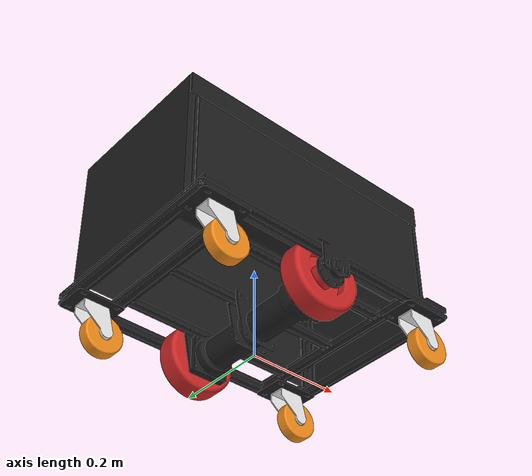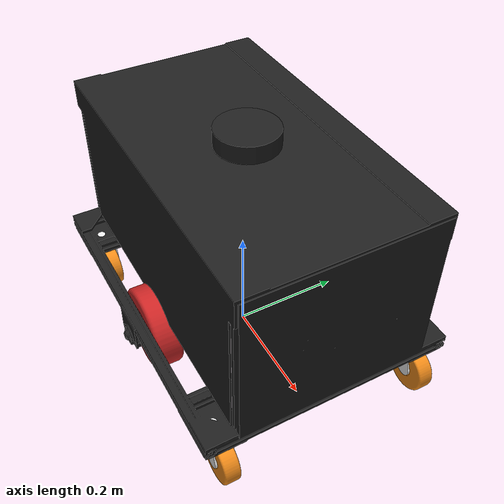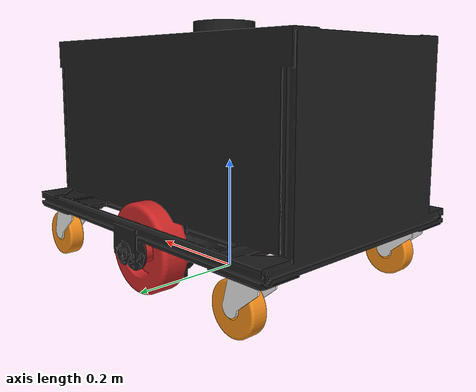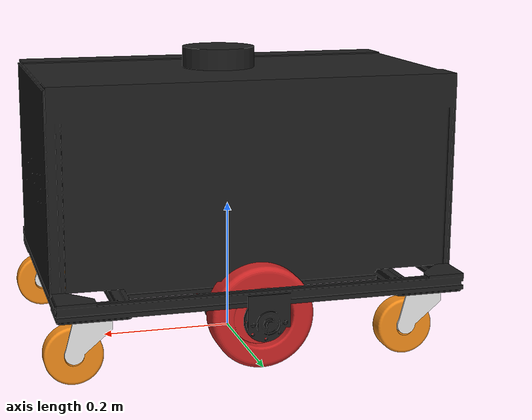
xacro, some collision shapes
<?xml version="1.0" ?>
<robot name="turtlebot3_waffle" xmlns:xacro="http://ros.org/wiki/xacro">
  <xacro:include filename="$(find turtlebot3_description)/urdf/common_properties.xacro"/>
  <xacro:include filename="$(find turtlebot3_description)/urdf/turtlebot3_waffle.gazebo.xacro"/>

  <link name="base_footprint"/>

  <joint name="base_joint" type="fixed">
    <parent link="base_footprint"/>
    <child link="base_link"/>
    <origin xyz="0 0 0" rpy="0 0 0"/>
  </joint>

  <link name="base_link">
    <visual>
      <origin xyz="0 0 0" rpy="0 0 0"/>
      <geometry>
        <mesh filename="package://turtlebot3_description/meshes/bases/base_link.STL" />
      </geometry>
      <material name="light_black"/>
    </visual>

    <collision>
      <origin xyz="0 0 0" rpy="0 0 0"/>
      <geometry>
        <mesh filename="package://turtlebot3_description/meshes/bases/base_link.STL" />
      </geometry>
    </collision>

    <inertial>
      <origin xyz="-1.61402176119143E-05 0.211585363756747 1.99118160999409E-08" rpy="0 0 0"/>
      <mass value="4.97825119597728"/>
      <inertia
        ixx="0.0254562268649868"
        ixy="2.61811741763744E-08"
        ixz="-1.52281155067974E-10"
        iyy="0.0769425840258945"
        iyz="-1.42371428386064E-09"
        izz="0.0715575020127173" />
    </inertial>
  </link>

  <joint name="wheel_left_joint" type="continuous">
    <parent link="base_link"/>
    <child link="wheel_left_link"/>
    <origin xyz="0 0.2075 0.075638" rpy="-1.5708 0 0"/>
    <axis xyz="0 0 1"/>
    <dynamics friction="0.01"/>
  </joint>

  <link name="wheel_left_link">
    <visual>
      <origin xyz="0 0 0" rpy="0 0 0"/>
      <geometry>
        <mesh filename="package://turtlebot3_description/meshes/wheels/wheel_left_link.STL"/>
      </geometry>
      <material name="red"/>
    </visual>

    <collision>
      <origin xyz="0 0 0" rpy="0 0 0"/>
      <geometry>
        <mesh filename="package://turtlebot3_description/meshes/wheels/wheel_left_link.STL"/>
      </geometry>
      <surface>
       <friction>
        <ode>
         <mu>0.7</mu>
         <mu2>0.7</mu2>
        </ode>
       </friction>
      </surface>
    </collision>

    <inertial>
      <origin xyz="1.8744E-15 -7.9797E-15 -0.0275" />
      <mass value="0.69027" />
       <inertia
        ixx="0.0012793"
        ixy="4.9184E-37"
        ixz="3.4973E-20"
        iyy="0.0012793"
        iyz="-2.2668E-36"
        izz="0.0022925" />
      </inertial>
  </link>

  <joint name="wheel_right_joint" type="continuous">
    <parent link="base_link"/>
    <child link="wheel_right_link"/>
    <origin xyz="0 -0.1525 0.075638" rpy="-1.5708 0 0"/>
    <axis xyz="0 0 1"/>
    <dynamics friction="0.01"/>
  </joint>

  <link name="wheel_right_link">
    <visual>
      <origin xyz="0 0 0" rpy="0 0 0"/>
      <geometry>
        <mesh filename="package://turtlebot3_description/meshes/wheels/wheel_left_link.STL"/>
      </geometry>
      <material name="red"/>
    </visual>

    <collision>
      <origin xyz="0 0 0" rpy="0 0 0"/>
      <geometry>
        <mesh filename="package://turtlebot3_description/meshes/wheels/wheel_left_link.STL"/>
      </geometry>
      <surface>
       <friction>
        <ode>
         <mu>0.7</mu>
         <mu2>0.7</mu2>
        </ode>
       </friction>
      </surface>
    </collision>

    <inertial>
      <origin xyz="6.5181E-15 4.3313E-14 0.0275" />
      <mass value="0.69027" />
      <inertia
        ixx="0.0012793"
        ixy="-4.8678E-37"
        ixz="4.6267E-20"
        iyy="0.0012793"
        iyz="-2.2668E-36"
        izz="0.0022925" />
      </inertial>
  </link>

  <joint name="imu_joint" type="fixed">
    <parent link="base_link"/>
    <child link="imu_link"/>
    <origin xyz="0 0 0.10" rpy="0 0 0"/>
  </joint>

  <link name="imu_link"/>

    <joint name="scan_joint" type="fixed">
    <parent link="base_link"/>
    <child link="base_scan"/>
    <origin xyz="0 0 0.438" rpy="0 0 0"/>
  </joint>

  <link name="base_scan">
    <visual>
      <origin xyz="0 0 0" rpy="0 0 0"/>
      <geometry>
        <mesh filename="package://turtlebot3_description/meshes/sensors/lds.stl" scale="0.001 0.001 0.001"/>
      </geometry>
      <material name="dark"/>
    </visual>

    <collision>
      <origin xyz="0.015 0 -0.0065" rpy="0 0 0"/>
      <geometry>
        <cylinder length="0.0315" radius="0.055"/>
      </geometry>
    </collision>

    <inertial>
      <mass value="0.114" />
      <origin xyz="0 0 0" />
      <inertia ixx="0.001" ixy="0.0" ixz="0.0"
               iyy="0.001" iyz="0.0"
               izz="0.001" />
    </inertial>
  </link>

   <joint name="caster1_joint" type="fixed">
    <parent link="base_link"/>
    <child link="caster1_link"/>
    <origin xyz="0.27449 0.20468 0.046466" rpy="1.5708 0 0"/>
    <axis xyz="0 0 0"/>
  </joint>

  <link name="caster1_link">
      <visual>
      <origin xyz="0 0 0" rpy="0 0 0"/>
      <geometry>
        <mesh filename="package://turtlebot3_description/meshes/wheels/caster1_link.STL" />
      </geometry>
      <material name="white"/>
    </visual>

    <collision>
      <origin xyz="0 0 0" rpy="0 0 0"/>
      <geometry>
        <mesh filename="package://turtlebot3_description/meshes/wheels/caster1_link.STL" />
      </geometry>
    </collision>

    <inertial>
      <origin xyz="-0.010009 0.016251 0.01778" />
      <mass value="0.038755" />
      <inertia
        ixx="2.3231E-05"
        ixy="9.1783E-06"
        ixz="2.2409E-21"
        iyy="1.6245E-05"
        iyz="-1.1984E-21"
        izz="2.7613E-05" />
    </inertial>
  </link>

   <joint name="caster2_joint" type="fixed">
    <parent link="base_link"/>
    <child link="caster2_link"/>
    <origin xyz="0.27449 -0.16912 0.046466" rpy="1.5708 0 0"/>
    <axis xyz="0 0 0"/>
  </joint>

  <link name="caster2_link">
      <visual>
      <origin xyz="0 0 0" rpy="0 0 0"/>
      <geometry>
        <mesh filename="package://turtlebot3_description/meshes/wheels/caster2_link.STL" />
      </geometry>
      <material name="white"/>
    </visual>

    <collision>
      <origin xyz="0 0 0" rpy="0 0 0"/>
      <geometry>
        <mesh filename="package://turtlebot3_description/meshes/wheels/caster2_link.STL" />
      </geometry>
    </collision>

    <inertial>
      <origin xyz="-0.010009 0.016251 0.01778" />
      <mass value="0.038755" />
      <inertia
        ixx="2.3231E-05"
        ixy="9.1783E-06"
        ixz="3.4536E-22"
        iyy="1.6245E-05"
        iyz="-6.0741E-23"
        izz="2.7613E-05" />
    </inertial>
  </link>

     <joint name="caster3_joint" type="fixed">
    <parent link="base_link"/>
    <child link="caster3_link"/>
    <origin xyz="-0.22061 0.20468 0.046466" rpy="1.5708 0 0"/>
    <axis xyz="0 0 0"/>
  </joint>

  <link name="caster3_link">
      <visual>
      <origin xyz="0 0 0" rpy="0 0 0"/>
      <geometry>
        <mesh filename="package://turtlebot3_description/meshes/wheels/caster3_link.STL" />
      </geometry>
      <material name="white"/>
    </visual>

    <collision>
      <origin xyz="0 0 0" rpy="0 0 0"/>
      <geometry>
        <mesh filename="package://turtlebot3_description/meshes/wheels/caster3_link.STL" />
      </geometry>
    </collision>

    <inertial>
      <origin xyz="-0.010009 0.016251 0.01778" />
      <mass value="0.038755" />
      <inertia
        ixx="2.3231E-05"
        ixy="9.1783E-06"
        ixz="-1.6302E-21"
        iyy="1.6245E-05"
        iyz="4.2278E-23"
        izz="2.7613E-05" />
    </inertial>
  </link>

    <joint name="caster4_joint" type="fixed">
    <parent link="base_link"/>
    <child link="caster4_link"/>
    <origin xyz="-0.22061 -0.16912 0.046466" rpy="1.5708 0 0"/>
    <axis xyz="0 0 0"/>
  </joint>

  <link name="caster4_link">
      <visual>
      <origin xyz="0 0 0" rpy="0 0 0"/>
      <geometry>
        <mesh filename="package://turtlebot3_description/meshes/wheels/caster4_link.STL" />
      </geometry>
      <material name="white"/>
    </visual>

    <collision>
      <origin xyz="0 0 0" rpy="0 0 0"/>
      <geometry>
        <mesh filename="package://turtlebot3_description/meshes/wheels/caster4_link.STL" />
      </geometry>
    </collision>

    <inertial>
      <origin xyz="-0.010009 0.016251 0.01778" />
      <mass value="0.038755" />
      <inertia
        ixx="2.3231E-05"
        ixy="9.1783E-06"
        ixz="-1.0983E-21"
        iyy="1.6245E-05"
        iyz="1.7878E-22"
        izz="2.7613E-05" />
    </inertial>
  </link>

    <joint name="roda1_joint" type="fixed">
    <parent link="caster1_link"/>
    <child link="roda1_link"/>
    <origin xyz="0 -0.0035 0" rpy="0 0 0.057049"/>
    <axis xyz="0 0 0"/>
    <dynamics damping="0" friction="0"/>
  </joint>

  <link name="roda1_link">
      <visual>
      <origin xyz="0 0 0" rpy="0 0 0"/>
      <geometry>
        <mesh filename="package://turtlebot3_description/meshes/wheels/roda1_link.STL" />
      </geometry>
      <material name="orange"/>
    </visual>

    <collision>
      <origin xyz="0 0 0" rpy="0 0 0"/>
      <geometry>
        <mesh filename="package://turtlebot3_description/meshes/wheels/roda1_link.STL" />
      </geometry>
      <surface>
       <friction>
        <ode>
         <mu>0</mu>
         <mu2>0</mu2>
        </ode>
       </friction>
      </surface>
    </collision>

    <inertial>
      <origin xyz="3.3307E-16 -2.0227E-15 0.017714" />
      <mass value="0.13541" />
      <inertia
        ixx="7.4142E-05"
        ixy="-8.4703E-22"
        ixz="9.1514E-19"
        iyy="7.4142E-05"
        iyz="-6.5014E-18"
        izz="0.00013101" />
    </inertial>
  </link>

    <joint name="roda2_joint" type="fixed">
    <parent link="caster2_link"/>
    <child link="roda2_link"/>
    <origin xyz="0 -0.0035 0" rpy="0 0 0.057049"/>
    <axis xyz="0 0 0"/>
    <dynamics damping="0" friction="0"/>
  </joint>

  <link name="roda2_link">
      <visual>
      <origin xyz="0 0 0" rpy="0 0 0"/>
      <geometry>
        <mesh filename="package://turtlebot3_description/meshes/wheels/roda2_link.STL" />
      </geometry>
      <material name="orange"/>
    </visual>

    <collision>
      <origin xyz="0 0 0" rpy="0 0 0"/>
      <geometry>
        <mesh filename="package://turtlebot3_description/meshes/wheels/roda2_link.STL" />
      </geometry>
      <surface>
       <friction>
        <ode>
         <mu>0</mu>
         <mu2>0</mu2>
        </ode>
       </friction>
      </surface>
    </collision>

    <inertial>
      <origin xyz="2.7756E-16 -2.1233E-15 0.017714" />
      <mass value="0.13541" />
      <inertia
        ixx="7.4142E-05"
        ixy="-8.4703E-22"
        ixz="9.0007E-19"
        iyy="7.4142E-05"
        iyz="-6.7956E-18"
        izz="0.00013101" />
    </inertial>
  </link>

    <joint name="roda3_joint" type="fixed">
    <parent link="caster3_link"/>
    <child link="roda3_link"/>
    <origin xyz="0 -0.0035 0" rpy="0 0 0.057049"/>
    <axis xyz="0 0 0"/>
    <dynamics damping="0" friction="0"/>
  </joint>

  <link name="roda3_link">
      <visual>
      <origin xyz="0 0 0" rpy="0 0 0"/>
      <geometry>
        <mesh filename="package://turtlebot3_description/meshes/wheels/roda3_link.STL" />
      </geometry>
      <material name="orange"/>
    </visual>

    <collision>
      <origin xyz="0 0 0" rpy="0 0 0"/>
      <geometry>
        <mesh filename="package://turtlebot3_description/meshes/wheels/roda3_link.STL" />
      </geometry>
      <surface>
       <friction>
        <ode>
         <mu>0</mu>
         <mu2>0</mu2>
        </ode>
       </friction>
      </surface>
    </collision>

    <inertial>
      <origin xyz="2.7756E-16 -2.0262E-15 0.017714" />
      <mass value="0.13541" />
      <inertia
        ixx="7.4142E-05"
        ixy="1.6941E-21"
        ixz="9.0984E-19"
        iyy="7.4142E-05"
        iyz="-6.501E-18"
        izz="0.00013101" />
    </inertial>
  </link>

    <joint name="roda4_joint" type="fixed">
    <parent link="caster4_link"/>
    <child link="roda4_link"/>
    <origin xyz="0 -0.0035 0" rpy="0 0 0.057049"/>
    <axis xyz="0 0 0"/>
    <dynamics damping="0" friction="0"/>
  </joint>

  <link name="roda4_link">
      <visual>
      <origin xyz="0 0 0" rpy="0 0 0"/>
      <geometry>
        <mesh filename="package://turtlebot3_description/meshes/wheels/roda4_link.STL" />
      </geometry>
      <material name="orange"/>
    </visual>

    <collision>
      <origin xyz="0 0 0" rpy="0 0 0"/>
      <geometry>
        <mesh filename="package://turtlebot3_description/meshes/wheels/roda4_link.STL" />
      </geometry>
      <surface>
       <friction>
        <ode>
         <mu>0</mu>
         <mu2>0</mu2>
        </ode>
       </friction>
      </surface>
    </collision>

    <inertial>
      <origin xyz="2.7756E-16 -2.1164E-15 0.017714" />
      <mass value="0.13541" />
      <inertia
        ixx="7.4142E-05"
        ixy="1.6941E-21"
        ixz="9.1444E-19"
        iyy="7.4142E-05"
        iyz="-6.7819E-18"
        izz="0.00013101" />
    </inertial>
  </link>
</robot>
